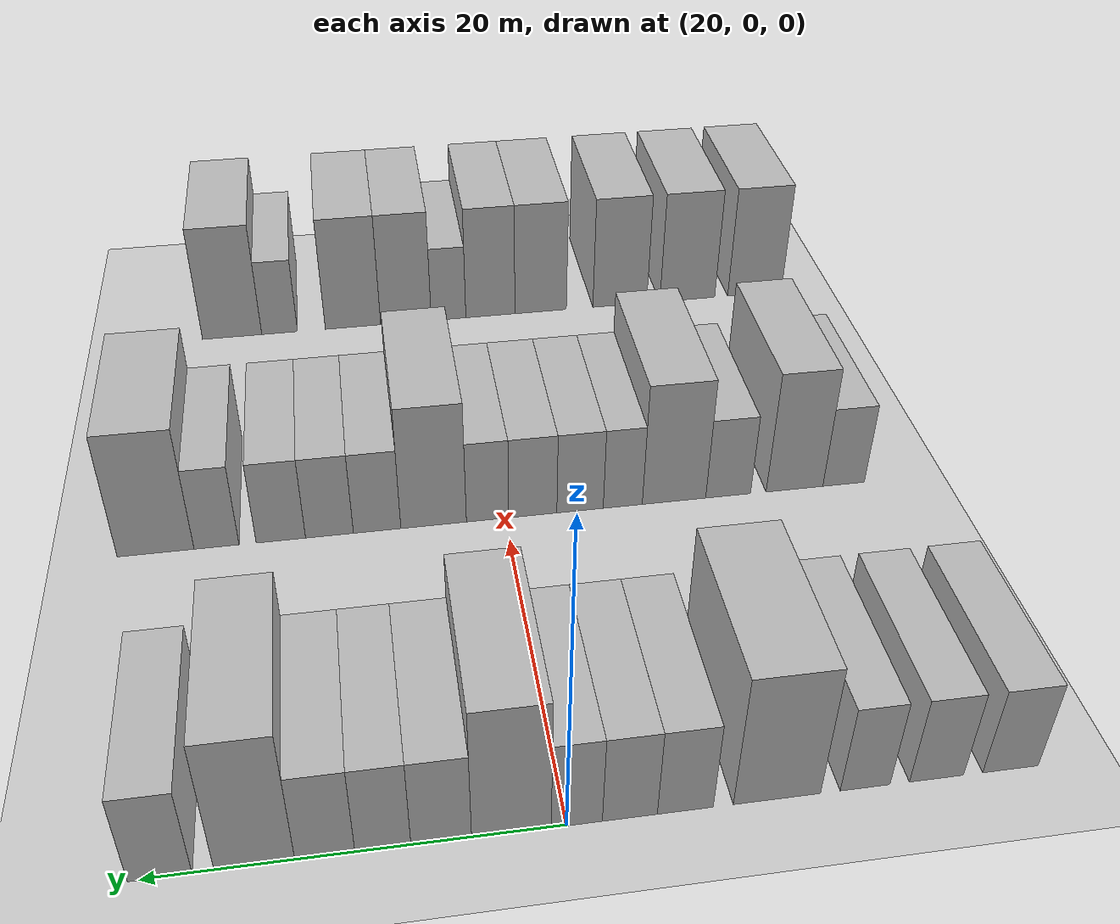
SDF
<sdf version="1.6">
 <world name="default">
  <include><name>ground_plane_1</name><uri>model://HANNAS_ground_plane</uri></include>
  <model name="building_92">
   <static>1</static>
   <pose>25.0000 -22.3426 0 0.000000 0.000000 0.000000</pose>
   <link name="link">
    <pose>0 0 3.00 0 0 0</pose>
    <collision name="collision"><geometry><box><size>10.0000 2.9084 6.0000</size></box></geometry></collision>
    <visual name="visual">
     <cast_shadows>0</cast_shadows>
     <geometry><box><size>10.0000 2.9084 6.0000</size></box></geometry>
     <material>
      <script>
       <uri>model://HANNAS_wall/materials/scripts</uri>
       <uri>model://HANNAS_wall/materials/textures</uri>
       <name>vrc/HANNAS_wall</name>
      </script>
     </material>
    </visual>
   </link>
  </model>
  <model name="building_93">
   <static>1</static>
   <pose>25.0000 -18.4885 0 0.000000 0.000000 0.000000</pose>
   <link name="link">
    <pose>0 0 3.00 0 0 0</pose>
    <collision name="collision"><geometry><box><size>10.0000 2.7998 6.0000</size></box></geometry></collision>
    <visual name="visual">
     <cast_shadows>0</cast_shadows>
     <geometry><box><size>10.0000 2.7998 6.0000</size></box></geometry>
     <material>
      <script>
       <uri>model://HANNAS_wall/materials/scripts</uri>
       <uri>model://HANNAS_wall/materials/textures</uri>
       <name>vrc/HANNAS_wall</name>
      </script>
     </material>
    </visual>
   </link>
  </model>
  <model name="building_94">
   <static>1</static>
   <pose>25.0000 -14.8160 0 0.000000 0.000000 0.000000</pose>
   <link name="link">
    <pose>0 0 3.00 0 0 0</pose>
    <collision name="collision"><geometry><box><size>10.0000 2.5451 6.0000</size></box></geometry></collision>
    <visual name="visual">
     <cast_shadows>0</cast_shadows>
     <geometry><box><size>10.0000 2.5451 6.0000</size></box></geometry>
     <material>
      <script>
       <uri>model://HANNAS_wall/materials/scripts</uri>
       <uri>model://HANNAS_wall/materials/textures</uri>
       <name>vrc/HANNAS_wall</name>
      </script>
     </material>
    </visual>
   </link>
  </model>
  <model name="building_95">
   <static>1</static>
   <pose>25.0000 -10.3498 0 0.000000 0.000000 0.000000</pose>
   <link name="link">
    <pose>0 0 4.50 0 0 0</pose>
    <collision name="collision"><geometry><box><size>10.0000 4.3874 9.0000</size></box></geometry></collision>
    <visual name="visual">
     <cast_shadows>0</cast_shadows>
     <geometry><box><size>10.0000 4.3874 9.0000</size></box></geometry>
     <material>
      <script>
       <uri>model://HANNAS_wall/materials/scripts</uri>
       <uri>model://HANNAS_wall/materials/textures</uri>
       <name>vrc/HANNAS_wall</name>
      </script>
     </material>
    </visual>
   </link>
  </model>
  <model name="building_96">
   <static>1</static>
   <pose>25.0000 -5.7723 0 0.000000 0.000000 0.000000</pose>
   <link name="link">
    <pose>0 0 3.00 0 0 0</pose>
    <collision name="collision"><geometry><box><size>10.0000 2.7677 6.0000</size></box></geometry></collision>
    <visual name="visual">
     <cast_shadows>0</cast_shadows>
     <geometry><box><size>10.0000 2.7677 6.0000</size></box></geometry>
     <material>
      <script>
       <uri>model://HANNAS_wall/materials/scripts</uri>
       <uri>model://HANNAS_wall/materials/textures</uri>
       <name>vrc/HANNAS_wall</name>
      </script>
     </material>
    </visual>
   </link>
  </model>
  <model name="building_97">
   <static>1</static>
   <pose>25.0000 -3.0412 0 0.000000 0.000000 0.000000</pose>
   <link name="link">
    <pose>0 0 3.00 0 0 0</pose>
    <collision name="collision"><geometry><box><size>10.0000 2.6944 6.0000</size></box></geometry></collision>
    <visual name="visual">
     <cast_shadows>0</cast_shadows>
     <geometry><box><size>10.0000 2.6944 6.0000</size></box></geometry>
     <material>
      <script>
       <uri>model://HANNAS_wall/materials/scripts</uri>
       <uri>model://HANNAS_wall/materials/textures</uri>
       <name>vrc/HANNAS_wall</name>
      </script>
     </material>
    </visual>
   </link>
  </model>
  <model name="building_98">
   <static>1</static>
   <pose>25.0000 -0.4532 0 0.000000 0.000000 0.000000</pose>
   <link name="link">
    <pose>0 0 3.00 0 0 0</pose>
    <collision name="collision"><geometry><box><size>10.0000 2.4816 6.0000</size></box></geometry></collision>
    <visual name="visual">
     <cast_shadows>0</cast_shadows>
     <geometry><box><size>10.0000 2.4816 6.0000</size></box></geometry>
     <material>
      <script>
       <uri>model://HANNAS_wall/materials/scripts</uri>
       <uri>model://HANNAS_wall/materials/textures</uri>
       <name>vrc/HANNAS_wall</name>
      </script>
     </material>
    </visual>
   </link>
  </model>
  <model name="building_99">
   <static>1</static>
   <pose>25.0000 2.6974 0 0.000000 0.000000 0.000000</pose>
   <link name="link">
    <pose>0 0 4.50 0 0 0</pose>
    <collision name="collision"><geometry><box><size>10.0000 3.8196 9.0000</size></box></geometry></collision>
    <visual name="visual">
     <cast_shadows>0</cast_shadows>
     <geometry><box><size>10.0000 3.8196 9.0000</size></box></geometry>
     <material>
      <script>
       <uri>model://HANNAS_wall/materials/scripts</uri>
       <uri>model://HANNAS_wall/materials/textures</uri>
       <name>vrc/HANNAS_wall</name>
      </script>
     </material>
    </visual>
   </link>
  </model>
  <model name="building_100">
   <static>1</static>
   <pose>25.0000 6.0445 0 0.000000 0.000000 0.000000</pose>
   <link name="link">
    <pose>0 0 3.00 0 0 0</pose>
    <collision name="collision"><geometry><box><size>10.0000 2.8745 6.0000</size></box></geometry></collision>
    <visual name="visual">
     <cast_shadows>0</cast_shadows>
     <geometry><box><size>10.0000 2.8745 6.0000</size></box></geometry>
     <material>
      <script>
       <uri>model://HANNAS_wall/materials/scripts</uri>
       <uri>model://HANNAS_wall/materials/textures</uri>
       <name>vrc/HANNAS_wall</name>
      </script>
     </material>
    </visual>
   </link>
  </model>
  <model name="building_101">
   <static>1</static>
   <pose>25.0000 8.7948 0 0.000000 0.000000 0.000000</pose>
   <link name="link">
    <pose>0 0 3.00 0 0 0</pose>
    <collision name="collision"><geometry><box><size>10.0000 2.6261 6.0000</size></box></geometry></collision>
    <visual name="visual">
     <cast_shadows>0</cast_shadows>
     <geometry><box><size>10.0000 2.6261 6.0000</size></box></geometry>
     <material>
      <script>
       <uri>model://HANNAS_wall/materials/scripts</uri>
       <uri>model://HANNAS_wall/materials/textures</uri>
       <name>vrc/HANNAS_wall</name>
      </script>
     </material>
    </visual>
   </link>
  </model>
  <model name="building_102">
   <static>1</static>
   <pose>25.0000 11.5036 0 0.000000 0.000000 0.000000</pose>
   <link name="link">
    <pose>0 0 3.00 0 0 0</pose>
    <collision name="collision"><geometry><box><size>10.0000 2.7913 6.0000</size></box></geometry></collision>
    <visual name="visual">
     <cast_shadows>0</cast_shadows>
     <geometry><box><size>10.0000 2.7913 6.0000</size></box></geometry>
     <material>
      <script>
       <uri>model://HANNAS_wall/materials/scripts</uri>
       <uri>model://HANNAS_wall/materials/textures</uri>
       <name>vrc/HANNAS_wall</name>
      </script>
     </material>
    </visual>
   </link>
  </model>
  <model name="building_103">
   <static>1</static>
   <pose>25.0000 14.7553 0 0.000000 0.000000 0.000000</pose>
   <link name="link">
    <pose>0 0 4.50 0 0 0</pose>
    <collision name="collision"><geometry><box><size>10.0000 3.7121 9.0000</size></box></geometry></collision>
    <visual name="visual">
     <cast_shadows>0</cast_shadows>
     <geometry><box><size>10.0000 3.7121 9.0000</size></box></geometry>
     <material>
      <script>
       <uri>model://HANNAS_wall/materials/scripts</uri>
       <uri>model://HANNAS_wall/materials/textures</uri>
       <name>vrc/HANNAS_wall</name>
      </script>
     </material>
    </visual>
   </link>
  </model>
  <model name="building_104">
   <static>1</static>
   <pose>25.0000 19.0760 0 0.000000 0.000000 0.000000</pose>
   <link name="link">
    <pose>0 0 3.00 0 0 0</pose>
    <collision name="collision"><geometry><box><size>10.0000 2.9293 6.0000</size></box></geometry></collision>
    <visual name="visual">
     <cast_shadows>0</cast_shadows>
     <geometry><box><size>10.0000 2.9293 6.0000</size></box></geometry>
     <material>
      <script>
       <uri>model://HANNAS_wall/materials/scripts</uri>
       <uri>model://HANNAS_wall/materials/textures</uri>
       <name>vrc/HANNAS_wall</name>
      </script>
     </material>
    </visual>
   </link>
  </model>
  <model name="building_278">
   <static>1</static>
   <pose>47.0000 -21.2920 0 0.000000 0.000000 0.000000</pose>
   <link name="link">
    <pose>0 0 3.00 0 0 0</pose>
    <collision name="collision"><geometry><box><size>10.0000 2.6957 6.0000</size></box></geometry></collision>
    <visual name="visual">
     <cast_shadows>0</cast_shadows>
     <geometry><box><size>10.0000 2.6957 6.0000</size></box></geometry>
     <material>
      <script>
       <uri>model://HANNAS_wall/materials/scripts</uri>
       <uri>model://HANNAS_wall/materials/textures</uri>
       <name>vrc/HANNAS_wall</name>
      </script>
     </material>
    </visual>
   </link>
  </model>
  <model name="building_279">
   <static>1</static>
   <pose>47.0000 -18.1196 0 0.000000 0.000000 0.000000</pose>
   <link name="link">
    <pose>0 0 4.50 0 0 0</pose>
    <collision name="collision"><geometry><box><size>10.0000 3.6491 9.0000</size></box></geometry></collision>
    <visual name="visual">
     <cast_shadows>0</cast_shadows>
     <geometry><box><size>10.0000 3.6491 9.0000</size></box></geometry>
     <material>
      <script>
       <uri>model://HANNAS_wall/materials/scripts</uri>
       <uri>model://HANNAS_wall/materials/textures</uri>
       <name>vrc/HANNAS_wall</name>
      </script>
     </material>
    </visual>
   </link>
  </model>
  <model name="building_280">
   <static>1</static>
   <pose>47.0000 -13.8722 0 0.000000 0.000000 0.000000</pose>
   <link name="link">
    <pose>0 0 3.00 0 0 0</pose>
    <collision name="collision"><geometry><box><size>10.0000 2.8456 6.0000</size></box></geometry></collision>
    <visual name="visual">
     <cast_shadows>0</cast_shadows>
     <geometry><box><size>10.0000 2.8456 6.0000</size></box></geometry>
     <material>
      <script>
       <uri>model://HANNAS_wall/materials/scripts</uri>
       <uri>model://HANNAS_wall/materials/textures</uri>
       <name>vrc/HANNAS_wall</name>
      </script>
     </material>
    </visual>
   </link>
  </model>
  <model name="building_281">
   <static>1</static>
   <pose>47.0000 -10.4534 0 0.000000 0.000000 0.000000</pose>
   <link name="link">
    <pose>0 0 4.50 0 0 0</pose>
    <collision name="collision"><geometry><box><size>10.0000 3.9921 9.0000</size></box></geometry></collision>
    <visual name="visual">
     <cast_shadows>0</cast_shadows>
     <geometry><box><size>10.0000 3.9921 9.0000</size></box></geometry>
     <material>
      <script>
       <uri>model://HANNAS_wall/materials/scripts</uri>
       <uri>model://HANNAS_wall/materials/textures</uri>
       <name>vrc/HANNAS_wall</name>
      </script>
     </material>
    </visual>
   </link>
  </model>
  <model name="building_282">
   <static>1</static>
   <pose>47.0000 -7.2385 0 0.000000 0.000000 0.000000</pose>
   <link name="link">
    <pose>0 0 3.00 0 0 0</pose>
    <collision name="collision"><geometry><box><size>10.0000 2.4376 6.0000</size></box></geometry></collision>
    <visual name="visual">
     <cast_shadows>0</cast_shadows>
     <geometry><box><size>10.0000 2.4376 6.0000</size></box></geometry>
     <material>
      <script>
       <uri>model://HANNAS_wall/materials/scripts</uri>
       <uri>model://HANNAS_wall/materials/textures</uri>
       <name>vrc/HANNAS_wall</name>
      </script>
     </material>
    </visual>
   </link>
  </model>
  <model name="building_283">
   <static>1</static>
   <pose>47.0000 -4.5840 0 0.000000 0.000000 0.000000</pose>
   <link name="link">
    <pose>0 0 3.00 0 0 0</pose>
    <collision name="collision"><geometry><box><size>10.0000 2.8716 6.0000</size></box></geometry></collision>
    <visual name="visual">
     <cast_shadows>0</cast_shadows>
     <geometry><box><size>10.0000 2.8716 6.0000</size></box></geometry>
     <material>
      <script>
       <uri>model://HANNAS_wall/materials/scripts</uri>
       <uri>model://HANNAS_wall/materials/textures</uri>
       <name>vrc/HANNAS_wall</name>
      </script>
     </material>
    </visual>
   </link>
  </model>
  <model name="building_284">
   <static>1</static>
   <pose>47.0000 -1.6698 0 0.000000 0.000000 0.000000</pose>
   <link name="link">
    <pose>0 0 3.00 0 0 0</pose>
    <collision name="collision"><geometry><box><size>10.0000 2.9567 6.0000</size></box></geometry></collision>
    <visual name="visual">
     <cast_shadows>0</cast_shadows>
     <geometry><box><size>10.0000 2.9567 6.0000</size></box></geometry>
     <material>
      <script>
       <uri>model://HANNAS_wall/materials/scripts</uri>
       <uri>model://HANNAS_wall/materials/textures</uri>
       <name>vrc/HANNAS_wall</name>
      </script>
     </material>
    </visual>
   </link>
  </model>
  <model name="building_285">
   <static>1</static>
   <pose>47.0000 1.0946 0 0.000000 0.000000 0.000000</pose>
   <link name="link">
    <pose>0 0 3.00 0 0 0</pose>
    <collision name="collision"><geometry><box><size>10.0000 2.5721 6.0000</size></box></geometry></collision>
    <visual name="visual">
     <cast_shadows>0</cast_shadows>
     <geometry><box><size>10.0000 2.5721 6.0000</size></box></geometry>
     <material>
      <script>
       <uri>model://HANNAS_wall/materials/scripts</uri>
       <uri>model://HANNAS_wall/materials/textures</uri>
       <name>vrc/HANNAS_wall</name>
      </script>
     </material>
    </visual>
   </link>
  </model>
  <model name="building_286">
   <static>1</static>
   <pose>47.0000 4.3606 0 0.000000 0.000000 0.000000</pose>
   <link name="link">
    <pose>0 0 4.50 0 0 0</pose>
    <collision name="collision"><geometry><box><size>10.0000 3.9599 9.0000</size></box></geometry></collision>
    <visual name="visual">
     <cast_shadows>0</cast_shadows>
     <geometry><box><size>10.0000 3.9599 9.0000</size></box></geometry>
     <material>
      <script>
       <uri>model://HANNAS_wall/materials/scripts</uri>
       <uri>model://HANNAS_wall/materials/textures</uri>
       <name>vrc/HANNAS_wall</name>
      </script>
     </material>
    </visual>
   </link>
  </model>
  <model name="building_287">
   <static>1</static>
   <pose>47.0000 7.7566 0 0.000000 0.000000 0.000000</pose>
   <link name="link">
    <pose>0 0 3.00 0 0 0</pose>
    <collision name="collision"><geometry><box><size>10.0000 2.8321 6.0000</size></box></geometry></collision>
    <visual name="visual">
     <cast_shadows>0</cast_shadows>
     <geometry><box><size>10.0000 2.8321 6.0000</size></box></geometry>
     <material>
      <script>
       <uri>model://HANNAS_wall/materials/scripts</uri>
       <uri>model://HANNAS_wall/materials/textures</uri>
       <name>vrc/HANNAS_wall</name>
      </script>
     </material>
    </visual>
   </link>
  </model>
  <model name="building_288">
   <static>1</static>
   <pose>47.0000 10.5924 0 0.000000 0.000000 0.000000</pose>
   <link name="link">
    <pose>0 0 3.00 0 0 0</pose>
    <collision name="collision"><geometry><box><size>10.0000 2.8394 6.0000</size></box></geometry></collision>
    <visual name="visual">
     <cast_shadows>0</cast_shadows>
     <geometry><box><size>10.0000 2.8394 6.0000</size></box></geometry>
     <material>
      <script>
       <uri>model://HANNAS_wall/materials/scripts</uri>
       <uri>model://HANNAS_wall/materials/textures</uri>
       <name>vrc/HANNAS_wall</name>
      </script>
     </material>
    </visual>
   </link>
  </model>
  <model name="building_289">
   <static>1</static>
   <pose>47.0000 13.4648 0 0.000000 0.000000 0.000000</pose>
   <link name="link">
    <pose>0 0 3.00 0 0 0</pose>
    <collision name="collision"><geometry><box><size>10.0000 2.9056 6.0000</size></box></geometry></collision>
    <visual name="visual">
     <cast_shadows>0</cast_shadows>
     <geometry><box><size>10.0000 2.9056 6.0000</size></box></geometry>
     <material>
      <script>
       <uri>model://HANNAS_wall/materials/scripts</uri>
       <uri>model://HANNAS_wall/materials/textures</uri>
       <name>vrc/HANNAS_wall</name>
      </script>
     </material>
    </visual>
   </link>
  </model>
  <model name="building_290">
   <static>1</static>
   <pose>47.0000 17.2246 0 0.000000 0.000000 0.000000</pose>
   <link name="link">
    <pose>0 0 3.00 0 0 0</pose>
    <collision name="collision"><geometry><box><size>10.0000 2.6140 6.0000</size></box></geometry></collision>
    <visual name="visual">
     <cast_shadows>0</cast_shadows>
     <geometry><box><size>10.0000 2.6140 6.0000</size></box></geometry>
     <material>
      <script>
       <uri>model://HANNAS_wall/materials/scripts</uri>
       <uri>model://HANNAS_wall/materials/textures</uri>
       <name>vrc/HANNAS_wall</name>
      </script>
     </material>
    </visual>
   </link>
  </model>
  <model name="building_291">
   <static>1</static>
   <pose>47.0000 20.7468 0 0.000000 0.000000 0.000000</pose>
   <link name="link">
    <pose>0 0 4.50 0 0 0</pose>
    <collision name="collision"><geometry><box><size>10.0000 4.4303 9.0000</size></box></geometry></collision>
    <visual name="visual">
     <cast_shadows>0</cast_shadows>
     <geometry><box><size>10.0000 4.4303 9.0000</size></box></geometry>
     <material>
      <script>
       <uri>model://HANNAS_wall/materials/scripts</uri>
       <uri>model://HANNAS_wall/materials/textures</uri>
       <name>vrc/HANNAS_wall</name>
      </script>
     </material>
    </visual>
   </link>
  </model>
  <model name="building_473">
   <static>1</static>
   <pose>69.0000 -21.8870 0 0.000000 0.000000 0.000000</pose>
   <link name="link">
    <pose>0 0 4.50 0 0 0</pose>
    <collision name="collision"><geometry><box><size>10.0000 4.1560 9.0000</size></box></geometry></collision>
    <visual name="visual">
     <cast_shadows>0</cast_shadows>
     <geometry><box><size>10.0000 4.1560 9.0000</size></box></geometry>
     <material>
      <script>
       <uri>model://HANNAS_wall/materials/scripts</uri>
       <uri>model://HANNAS_wall/materials/textures</uri>
       <name>vrc/HANNAS_wall</name>
      </script>
     </material>
    </visual>
   </link>
  </model>
  <model name="building_474">
   <static>1</static>
   <pose>69.0000 -16.7043 0 0.000000 0.000000 0.000000</pose>
   <link name="link">
    <pose>0 0 4.50 0 0 0</pose>
    <collision name="collision"><geometry><box><size>10.0000 4.2093 9.0000</size></box></geometry></collision>
    <visual name="visual">
     <cast_shadows>0</cast_shadows>
     <geometry><box><size>10.0000 4.2093 9.0000</size></box></geometry>
     <material>
      <script>
       <uri>model://HANNAS_wall/materials/scripts</uri>
       <uri>model://HANNAS_wall/materials/textures</uri>
       <name>vrc/HANNAS_wall</name>
      </script>
     </material>
    </visual>
   </link>
  </model>
  <model name="building_475">
   <static>1</static>
   <pose>69.0000 -11.5605 0 0.000000 0.000000 0.000000</pose>
   <link name="link">
    <pose>0 0 4.50 0 0 0</pose>
    <collision name="collision"><geometry><box><size>10.0000 4.0784 9.0000</size></box></geometry></collision>
    <visual name="visual">
     <cast_shadows>0</cast_shadows>
     <geometry><box><size>10.0000 4.0784 9.0000</size></box></geometry>
     <material>
      <script>
       <uri>model://HANNAS_wall/materials/scripts</uri>
       <uri>model://HANNAS_wall/materials/textures</uri>
       <name>vrc/HANNAS_wall</name>
      </script>
     </material>
    </visual>
   </link>
  </model>
  <model name="building_476">
   <static>1</static>
   <pose>69.0000 -5.6003 0 0.000000 0.000000 0.000000</pose>
   <link name="link">
    <pose>0 0 4.50 0 0 0</pose>
    <collision name="collision"><geometry><box><size>10.0000 3.8418 9.0000</size></box></geometry></collision>
    <visual name="visual">
     <cast_shadows>0</cast_shadows>
     <geometry><box><size>10.0000 3.8418 9.0000</size></box></geometry>
     <material>
      <script>
       <uri>model://HANNAS_wall/materials/scripts</uri>
       <uri>model://HANNAS_wall/materials/textures</uri>
       <name>vrc/HANNAS_wall</name>
      </script>
     </material>
    </visual>
   </link>
  </model>
  <model name="building_477">
   <static>1</static>
   <pose>69.0000 -1.8632 0 0.000000 0.000000 0.000000</pose>
   <link name="link">
    <pose>0 0 4.50 0 0 0</pose>
    <collision name="collision"><geometry><box><size>10.0000 3.6325 9.0000</size></box></geometry></collision>
    <visual name="visual">
     <cast_shadows>0</cast_shadows>
     <geometry><box><size>10.0000 3.6325 9.0000</size></box></geometry>
     <material>
      <script>
       <uri>model://HANNAS_wall/materials/scripts</uri>
       <uri>model://HANNAS_wall/materials/textures</uri>
       <name>vrc/HANNAS_wall</name>
      </script>
     </material>
    </visual>
   </link>
  </model>
  <model name="building_478">
   <static>1</static>
   <pose>69.0000 1.2234 0 0.000000 0.000000 0.000000</pose>
   <link name="link">
    <pose>0 0 3.00 0 0 0</pose>
    <collision name="collision"><geometry><box><size>10.0000 2.5408 6.0000</size></box></geometry></collision>
    <visual name="visual">
     <cast_shadows>0</cast_shadows>
     <geometry><box><size>10.0000 2.5408 6.0000</size></box></geometry>
     <material>
      <script>
       <uri>model://HANNAS_wall/materials/scripts</uri>
       <uri>model://HANNAS_wall/materials/textures</uri>
       <name>vrc/HANNAS_wall</name>
      </script>
     </material>
    </visual>
   </link>
  </model>
  <model name="building_479">
   <static>1</static>
   <pose>69.0000 4.3413 0 0.000000 0.000000 0.000000</pose>
   <link name="link">
    <pose>0 0 4.50 0 0 0</pose>
    <collision name="collision"><geometry><box><size>10.0000 3.6951 9.0000</size></box></geometry></collision>
    <visual name="visual">
     <cast_shadows>0</cast_shadows>
     <geometry><box><size>10.0000 3.6951 9.0000</size></box></geometry>
     <material>
      <script>
       <uri>model://HANNAS_wall/materials/scripts</uri>
       <uri>model://HANNAS_wall/materials/textures</uri>
       <name>vrc/HANNAS_wall</name>
      </script>
     </material>
    </visual>
   </link>
  </model>
  <model name="building_480">
   <static>1</static>
   <pose>69.0000 8.1912 0 0.000000 0.000000 0.000000</pose>
   <link name="link">
    <pose>0 0 4.50 0 0 0</pose>
    <collision name="collision"><geometry><box><size>10.0000 4.0047 9.0000</size></box></geometry></collision>
    <visual name="visual">
     <cast_shadows>0</cast_shadows>
     <geometry><box><size>10.0000 4.0047 9.0000</size></box></geometry>
     <material>
      <script>
       <uri>model://HANNAS_wall/materials/scripts</uri>
       <uri>model://HANNAS_wall/materials/textures</uri>
       <name>vrc/HANNAS_wall</name>
      </script>
     </material>
    </visual>
   </link>
  </model>
  <model name="building_481">
   <static>1</static>
   <pose>69.0000 13.4718 0 0.000000 0.000000 0.000000</pose>
   <link name="link">
    <pose>0 0 3.00 0 0 0</pose>
    <collision name="collision"><geometry><box><size>10.0000 2.5565 6.0000</size></box></geometry></collision>
    <visual name="visual">
     <cast_shadows>0</cast_shadows>
     <geometry><box><size>10.0000 2.5565 6.0000</size></box></geometry>
     <material>
      <script>
       <uri>model://HANNAS_wall/materials/scripts</uri>
       <uri>model://HANNAS_wall/materials/textures</uri>
       <name>vrc/HANNAS_wall</name>
      </script>
     </material>
    </visual>
   </link>
  </model>
  <model name="building_482">
   <static>1</static>
   <pose>69.0000 16.8486 0 0.000000 0.000000 0.000000</pose>
   <link name="link">
    <pose>0 0 4.50 0 0 0</pose>
    <collision name="collision"><geometry><box><size>10.0000 4.1969 9.0000</size></box></geometry></collision>
    <visual name="visual">
     <cast_shadows>0</cast_shadows>
     <geometry><box><size>10.0000 4.1969 9.0000</size></box></geometry>
     <material>
      <script>
       <uri>model://HANNAS_wall/materials/scripts</uri>
       <uri>model://HANNAS_wall/materials/textures</uri>
       <name>vrc/HANNAS_wall</name>
      </script>
     </material>
    </visual>
   </link>
  </model>
 </world>
</sdf>
